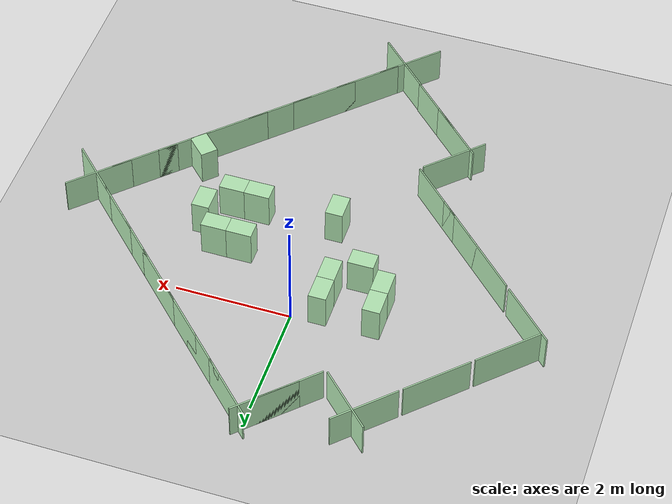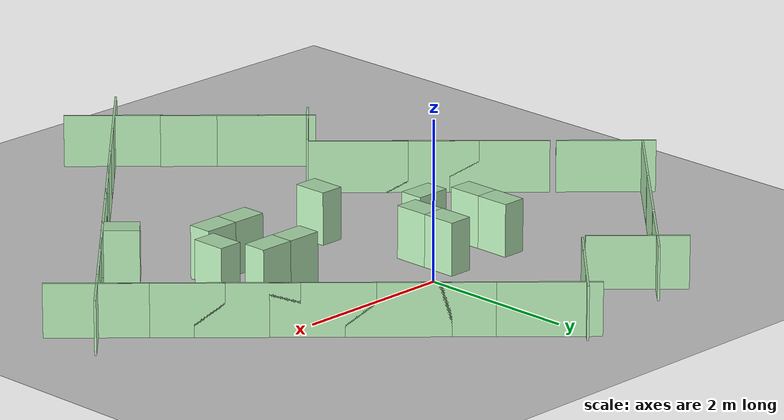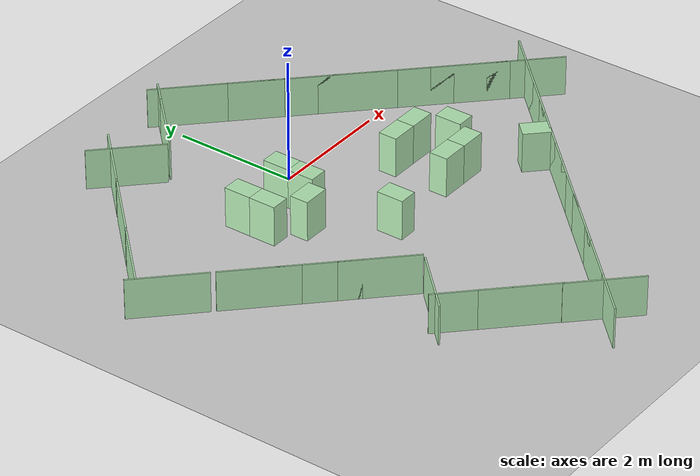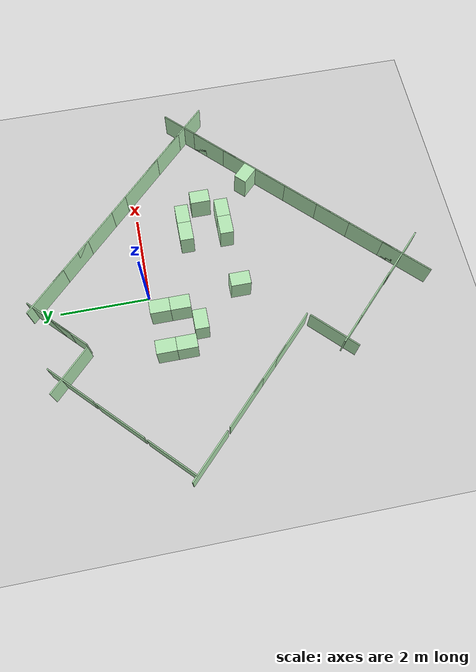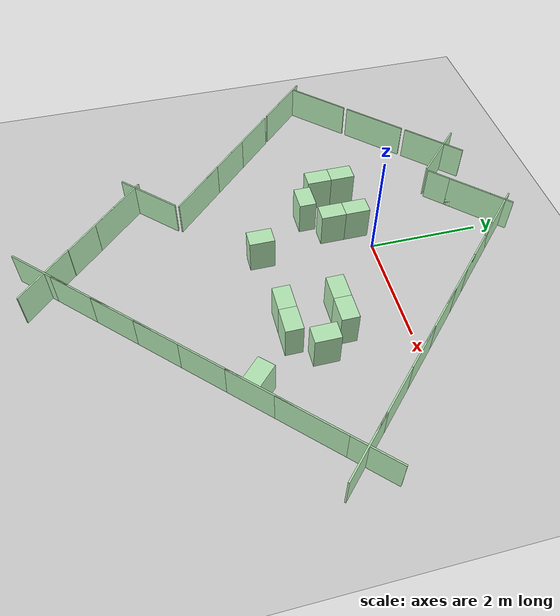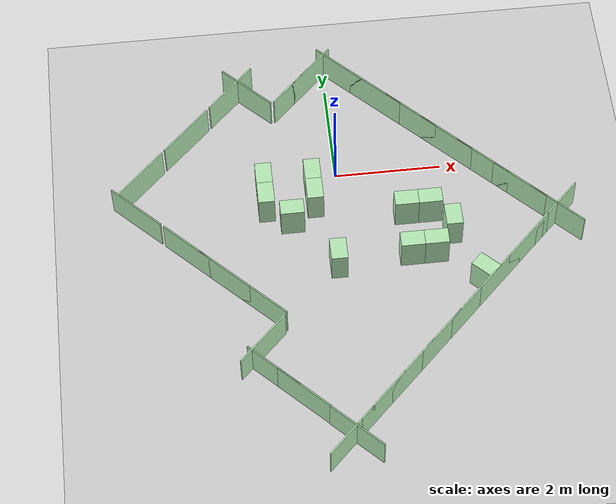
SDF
<sdf version="1.6">
 <world name="default">
  <scene><ambient>0.5 0.5 0.5 1</ambient><background>0.5 0.5 0.5 1</background><shadows>0</shadows></scene>
  <physics name="default_physics" default="0" type="ode">
   <ode>
    <solver>
     <type>quick</type>
     <iters>10</iters>
     <sor>1.3</sor>
     <use_dynamic_moi_rescaling>0</use_dynamic_moi_rescaling>
    </solver>
    <constraints>
     <cfm>0</cfm>
     <erp>0.2</erp>
     <contact_max_correcting_vel>100</contact_max_correcting_vel>
     <contact_surface_layer>0.001</contact_surface_layer>
    </constraints>
   </ode>
   <real_time_update_rate>100</real_time_update_rate>
   <max_step_size>0.01</max_step_size>
   <real_time_factor>1</real_time_factor>
  </physics>
  <light name="directional_light_1" type="directional">
   <cast_shadows>0</cast_shadows>
   <pose>0 0 30 0.1 0.1 0</pose>
   <diffuse>1 1 1 1</diffuse>
   <specular>0.1 0.1 0.1 1</specular>
   <attenuation><range>300</range></attenuation>
   <direction>0.1 0.1 -1</direction>
  </light>
  <model name="ground_plane">
   <static>1</static>
   <link name="link">
    <collision name="collision">
     <geometry><plane><normal>0 0 1</normal><size>100 100</size></plane></geometry>
     <surface><friction><ode><mu>100</mu><mu2>50</mu2></ode></friction></surface>
    </collision>
    <visual name="visual">
     <cast_shadows>0</cast_shadows>
     <geometry><plane><normal>0 0 1</normal><size>100 100</size></plane></geometry>
     <material>
      <script><uri>file://media/materials/scripts/gazebo.material</uri><name>Gazebo/Grey</name></script>
     </material>
    </visual>
   </link>
  </model>
  <model name="wall_1">
   <static>1</static>
   <link name="wall_1_link">
    <pose>-3.78491 -0.73691 0.15 0 -0 0.785398</pose>
    <collision name="wall_1_collision"><geometry><box><size>0.0254 1.2192 1.0</size></box></geometry></collision>
    <visual name="wall_1_visual">
     <geometry><box><size>0.0254 1.2192 1.0</size></box></geometry>
     <material>
      <ambient>0.7 0.9 0.7 1</ambient>
      <diffuse>0.7 0.9 0.7 1</diffuse>
      <specular>0.1 0.1 0.1 1</specular>
      <emissive>0 0 0 0</emissive>
     </material>
    </visual>
   </link>
  </model>
  <model name="wall_2">
   <static>1</static>
   <link name="wall_2_link">
    <pose>-2.87051 -1.65131 0.15 0 -0 0.785398</pose>
    <collision name="wall_2_collision"><geometry><box><size>0.0254 1.2192 1.0</size></box></geometry></collision>
    <visual name="wall_2_visual">
     <geometry><box><size>0.0254 1.2192 1.0</size></box></geometry>
     <material>
      <ambient>0.7 0.9 0.7 1</ambient>
      <diffuse>0.7 0.9 0.7 1</diffuse>
      <specular>0.1 0.1 0.1 1</specular>
      <emissive>0 0 0 0</emissive>
     </material>
    </visual>
   </link>
  </model>
  <model name="wall_3">
   <static>1</static>
   <link name="wall_3_link">
    <pose>-2.26091 -2.26091 0.15 0 -0 0.785398</pose>
    <collision name="wall_3_collision"><geometry><box><size>0.0254 1.2192 1.0</size></box></geometry></collision>
    <visual name="wall_3_visual">
     <geometry><box><size>0.0254 1.2192 1.0</size></box></geometry>
     <material>
      <ambient>0.7 0.9 0.7 1</ambient>
      <diffuse>0.7 0.9 0.7 1</diffuse>
      <specular>0.1 0.1 0.1 1</specular>
      <emissive>0 0 0 0</emissive>
     </material>
    </visual>
   </link>
  </model>
  <model name="wall_4">
   <static>1</static>
   <link name="wall_4_link">
    <pose>-1.65131 -2.87051 0.15 0 -0 0.785398</pose>
    <collision name="wall_4_collision"><geometry><box><size>0.0254 1.2192 1.0</size></box></geometry></collision>
    <visual name="wall_4_visual">
     <geometry><box><size>0.0254 1.2192 1.0</size></box></geometry>
     <material>
      <ambient>0.7 0.9 0.7 1</ambient>
      <diffuse>0.7 0.9 0.7 1</diffuse>
      <specular>0.1 0.1 0.1 1</specular>
      <emissive>0 0 0 0</emissive>
     </material>
    </visual>
   </link>
  </model>
  <model name="wall_5">
   <static>1</static>
   <link name="wall_5_link">
    <pose>-1.6941 -3.7923 0.15 0 0 -0.785398</pose>
    <collision name="wall_5_collision"><geometry><box><size>0.0254 1.2192 1.0</size></box></geometry></collision>
    <visual name="wall_5_visual">
     <geometry><box><size>0.0254 1.2192 1.0</size></box></geometry>
     <material>
      <ambient>0.7 0.9 0.7 1</ambient>
      <diffuse>0.7 0.9 0.7 1</diffuse>
      <specular>0.1 0.1 0.1 1</specular>
      <emissive>0 0 0 0</emissive>
     </material>
    </visual>
   </link>
  </model>
  <model name="wall_6">
   <static>1</static>
   <link name="wall_6_link">
    <pose>-1.524 1.8288 0.15 0 -0 0.785398</pose>
    <collision name="wall_6_collision"><geometry><box><size>0.0254 1.2192 1.0</size></box></geometry></collision>
    <visual name="wall_6_visual">
     <geometry><box><size>0.0254 1.2192 1.0</size></box></geometry>
     <material>
      <ambient>0.7 0.9 0.7 1</ambient>
      <diffuse>0.7 0.9 0.7 1</diffuse>
      <specular>0.1 0.1 0.1 1</specular>
      <emissive>0 0 0 0</emissive>
     </material>
    </visual>
   </link>
  </model>
  <model name="wall_7">
   <static>1</static>
   <link name="wall_7_link">
    <pose>0.332269 2.16107 0.15 0 -0 0.785398</pose>
    <collision name="wall_7_collision"><geometry><box><size>0.0254 1.2192 1.0</size></box></geometry></collision>
    <visual name="wall_7_visual">
     <geometry><box><size>0.0254 1.2192 1.0</size></box></geometry>
     <material>
      <ambient>0.7 0.9 0.7 1</ambient>
      <diffuse>0.7 0.9 0.7 1</diffuse>
      <specular>0.1 0.1 0.1 1</specular>
      <emissive>0 0 0 0</emissive>
     </material>
    </visual>
   </link>
  </model>
  <model name="wall_8">
   <static>1</static>
   <link name="wall_8_link">
    <pose>0.941869 1.55147 0.15 0 -0 0.785398</pose>
    <collision name="wall_8_collision"><geometry><box><size>0.0254 1.2192 1.0</size></box></geometry></collision>
    <visual name="wall_8_visual">
     <geometry><box><size>0.0254 1.2192 1.0</size></box></geometry>
     <material>
      <ambient>0.7 0.9 0.7 1</ambient>
      <diffuse>0.7 0.9 0.7 1</diffuse>
      <specular>0.1 0.1 0.1 1</specular>
      <emissive>0 0 0 0</emissive>
     </material>
    </visual>
   </link>
  </model>
  <model name="wall_9">
   <static>1</static>
   <link name="wall_9_link">
    <pose>1.55147 0.941869 0.15 0 -0 0.785398</pose>
    <collision name="wall_9_collision"><geometry><box><size>0.0254 1.2192 1.0</size></box></geometry></collision>
    <visual name="wall_9_visual">
     <geometry><box><size>0.0254 1.2192 1.0</size></box></geometry>
     <material>
      <ambient>0.7 0.9 0.7 1</ambient>
      <diffuse>0.7 0.9 0.7 1</diffuse>
      <specular>0.1 0.1 0.1 1</specular>
      <emissive>0 0 0 0</emissive>
     </material>
    </visual>
   </link>
  </model>
  <model name="wall_10">
   <static>1</static>
   <link name="wall_10_link">
    <pose>2.16107 0.332269 0.15 0 -0 0.785398</pose>
    <collision name="wall_10_collision"><geometry><box><size>0.0254 1.2192 1.0</size></box></geometry></collision>
    <visual name="wall_10_visual">
     <geometry><box><size>0.0254 1.2192 1.0</size></box></geometry>
     <material>
      <ambient>0.7 0.9 0.7 1</ambient>
      <diffuse>0.7 0.9 0.7 1</diffuse>
      <specular>0.1 0.1 0.1 1</specular>
      <emissive>0 0 0 0</emissive>
     </material>
    </visual>
   </link>
  </model>
  <model name="wall_11">
   <static>1</static>
   <link name="wall_11_link">
    <pose>2.77067 -0.277331 0.15 0 -0 0.785398</pose>
    <collision name="wall_11_collision"><geometry><box><size>0.0254 1.2192 1.0</size></box></geometry></collision>
    <visual name="wall_11_visual">
     <geometry><box><size>0.0254 1.2192 1.0</size></box></geometry>
     <material>
      <ambient>0.7 0.9 0.7 1</ambient>
      <diffuse>0.7 0.9 0.7 1</diffuse>
      <specular>0.1 0.1 0.1 1</specular>
      <emissive>0 0 0 0</emissive>
     </material>
    </visual>
   </link>
  </model>
  <model name="wall_12">
   <static>1</static>
   <link name="wall_12_link">
    <pose>3.38027 -0.886931 0.15 0 -0 0.785398</pose>
    <collision name="wall_12_collision"><geometry><box><size>0.0254 1.2192 1.0</size></box></geometry></collision>
    <visual name="wall_12_visual">
     <geometry><box><size>0.0254 1.2192 1.0</size></box></geometry>
     <material>
      <ambient>0.7 0.9 0.7 1</ambient>
      <diffuse>0.7 0.9 0.7 1</diffuse>
      <specular>0.1 0.1 0.1 1</specular>
      <emissive>0 0 0 0</emissive>
     </material>
    </visual>
   </link>
  </model>
  <model name="wall_13">
   <static>1</static>
   <link name="wall_13_link">
    <pose>3.98987 -1.49653 0.15 0 -0 0.785398</pose>
    <collision name="wall_13_collision"><geometry><box><size>0.0254 1.2192 1.0</size></box></geometry></collision>
    <visual name="wall_13_visual">
     <geometry><box><size>0.0254 1.2192 1.0</size></box></geometry>
     <material>
      <ambient>0.7 0.9 0.7 1</ambient>
      <diffuse>0.7 0.9 0.7 1</diffuse>
      <specular>0.1 0.1 0.1 1</specular>
      <emissive>0 0 0 0</emissive>
     </material>
    </visual>
   </link>
  </model>
  <model name="wall_14">
   <static>1</static>
   <link name="wall_14_link">
    <pose>-0.312194 -5.78381 0.15 0 0 -0.785398</pose>
    <collision name="wall_14_collision"><geometry><box><size>0.0254 1.2192 1.0</size></box></geometry></collision>
    <visual name="wall_14_visual">
     <geometry><box><size>0.0254 1.2192 1.0</size></box></geometry>
     <material>
      <ambient>0.7 0.9 0.7 1</ambient>
      <diffuse>0.7 0.9 0.7 1</diffuse>
      <specular>0.1 0.1 0.1 1</specular>
      <emissive>0 0 0 0</emissive>
     </material>
    </visual>
   </link>
  </model>
  <model name="wall_15">
   <static>1</static>
   <link name="wall_15_link">
    <pose>0.297406 -5.17421 0.15 0 0 -0.785398</pose>
    <collision name="wall_15_collision"><geometry><box><size>0.0254 1.2192 1.0</size></box></geometry></collision>
    <visual name="wall_15_visual">
     <geometry><box><size>0.0254 1.2192 1.0</size></box></geometry>
     <material>
      <ambient>0.7 0.9 0.7 1</ambient>
      <diffuse>0.7 0.9 0.7 1</diffuse>
      <specular>0.1 0.1 0.1 1</specular>
      <emissive>0 0 0 0</emissive>
     </material>
    </visual>
   </link>
  </model>
  <model name="wall_16">
   <static>1</static>
   <link name="wall_16_link">
    <pose>0.907006 -4.56461 0.15 0 0 -0.785398</pose>
    <collision name="wall_16_collision"><geometry><box><size>0.0254 1.2192 1.0</size></box></geometry></collision>
    <visual name="wall_16_visual">
     <geometry><box><size>0.0254 1.2192 1.0</size></box></geometry>
     <material>
      <ambient>0.7 0.9 0.7 1</ambient>
      <diffuse>0.7 0.9 0.7 1</diffuse>
      <specular>0.1 0.1 0.1 1</specular>
      <emissive>0 0 0 0</emissive>
     </material>
    </visual>
   </link>
  </model>
  <model name="wall_17">
   <static>1</static>
   <link name="wall_17_link">
    <pose>1.51661 -3.95501 0.15 0 0 -0.785398</pose>
    <collision name="wall_17_collision"><geometry><box><size>0.0254 1.2192 1.0</size></box></geometry></collision>
    <visual name="wall_17_visual">
     <geometry><box><size>0.0254 1.2192 1.0</size></box></geometry>
     <material>
      <ambient>0.7 0.9 0.7 1</ambient>
      <diffuse>0.7 0.9 0.7 1</diffuse>
      <specular>0.1 0.1 0.1 1</specular>
      <emissive>0 0 0 0</emissive>
     </material>
    </visual>
   </link>
  </model>
  <model name="wall_18">
   <static>1</static>
   <link name="wall_18_link">
    <pose>2.12621 -3.34541 0.15 0 0 -0.785398</pose>
    <collision name="wall_18_collision"><geometry><box><size>0.0254 1.2192 1.0</size></box></geometry></collision>
    <visual name="wall_18_visual">
     <geometry><box><size>0.0254 1.2192 1.0</size></box></geometry>
     <material>
      <ambient>0.7 0.9 0.7 1</ambient>
      <diffuse>0.7 0.9 0.7 1</diffuse>
      <specular>0.1 0.1 0.1 1</specular>
      <emissive>0 0 0 0</emissive>
     </material>
    </visual>
   </link>
  </model>
  <model name="wall_19">
   <static>1</static>
   <link name="wall_19_link">
    <pose>2.73581 -2.73581 0.15 0 0 -0.785398</pose>
    <collision name="wall_19_collision"><geometry><box><size>0.0254 1.2192 1.0</size></box></geometry></collision>
    <visual name="wall_19_visual">
     <geometry><box><size>0.0254 1.2192 1.0</size></box></geometry>
     <material>
      <ambient>0.7 0.9 0.7 1</ambient>
      <diffuse>0.7 0.9 0.7 1</diffuse>
      <specular>0.1 0.1 0.1 1</specular>
      <emissive>0 0 0 0</emissive>
     </material>
    </visual>
   </link>
  </model>
  <model name="wall_20">
   <static>1</static>
   <link name="wall_20_link">
    <pose>3.34541 -2.12621 0.15 0 0 -0.785398</pose>
    <collision name="wall_20_collision"><geometry><box><size>0.0254 1.2192 1.0</size></box></geometry></collision>
    <visual name="wall_20_visual">
     <geometry><box><size>0.0254 1.2192 1.0</size></box></geometry>
     <material>
      <ambient>0.7 0.9 0.7 1</ambient>
      <diffuse>0.7 0.9 0.7 1</diffuse>
      <specular>0.1 0.1 0.1 1</specular>
      <emissive>0 0 0 0</emissive>
     </material>
    </visual>
   </link>
  </model>
  <model name="wall_21">
   <static>1</static>
   <link name="wall_21_link">
    <pose>3.95501 -1.51661 0.15 0 0 -0.785398</pose>
    <collision name="wall_21_collision"><geometry><box><size>0.0254 1.2192 1.0</size></box></geometry></collision>
    <visual name="wall_21_visual">
     <geometry><box><size>0.0254 1.2192 1.0</size></box></geometry>
     <material>
      <ambient>0.7 0.9 0.7 1</ambient>
      <diffuse>0.7 0.9 0.7 1</diffuse>
      <specular>0.1 0.1 0.1 1</specular>
      <emissive>0 0 0 0</emissive>
     </material>
    </visual>
   </link>
  </model>
  <model name="wall_22">
   <static>1</static>
   <link name="wall_22_link">
    <pose>-0.29582 2.14258 0.15 0 0 -0.785398</pose>
    <collision name="wall_22_collision"><geometry><box><size>0.0254 1.2192 1.0</size></box></geometry></collision>
    <visual name="wall_22_visual">
     <geometry><box><size>0.0254 1.2192 1.0</size></box></geometry>
     <material>
      <ambient>0.7 0.9 0.7 1</ambient>
      <diffuse>0.7 0.9 0.7 1</diffuse>
      <specular>0.1 0.1 0.1 1</specular>
      <emissive>0 0 0 0</emissive>
     </material>
    </visual>
   </link>
  </model>
  <model name="wall_23">
   <static>1</static>
   <link name="wall_23_link">
    <pose>-0.60062 1.83778 0.15 0 0 -0.785398</pose>
    <collision name="wall_23_collision"><geometry><box><size>0.0254 1.2192 1.0</size></box></geometry></collision>
    <visual name="wall_23_visual">
     <geometry><box><size>0.0254 1.2192 1.0</size></box></geometry>
     <material>
      <ambient>0.7 0.9 0.7 1</ambient>
      <diffuse>0.7 0.9 0.7 1</diffuse>
      <specular>0.1 0.1 0.1 1</specular>
      <emissive>0 0 0 0</emissive>
     </material>
    </visual>
   </link>
  </model>
  <model name="wall_24">
   <static>1</static>
   <link name="wall_24_link">
    <pose>-1.83778 1.83778 0.15 0 0 -0.785398</pose>
    <collision name="wall_24_collision"><geometry><box><size>0.0254 1.2192 1.0</size></box></geometry></collision>
    <visual name="wall_24_visual">
     <geometry><box><size>0.0254 1.2192 1.0</size></box></geometry>
     <material>
      <ambient>0.7 0.9 0.7 1</ambient>
      <diffuse>0.7 0.9 0.7 1</diffuse>
      <specular>0.1 0.1 0.1 1</specular>
      <emissive>0 0 0 0</emissive>
     </material>
    </visual>
   </link>
  </model>
  <model name="wall_25">
   <static>1</static>
   <link name="wall_25_link">
    <pose>-2.75218 0.92338 0.15 0 0 -0.785398</pose>
    <collision name="wall_25_collision"><geometry><box><size>0.0254 1.2192 1.0</size></box></geometry></collision>
    <visual name="wall_25_visual">
     <geometry><box><size>0.0254 1.2192 1.0</size></box></geometry>
     <material>
      <ambient>0.7 0.9 0.7 1</ambient>
      <diffuse>0.7 0.9 0.7 1</diffuse>
      <specular>0.1 0.1 0.1 1</specular>
      <emissive>0 0 0 0</emissive>
     </material>
    </visual>
   </link>
  </model>
  <model name="wall_26">
   <static>1</static>
   <link name="wall_26_link">
    <pose>-3.66658 0.00898 0.15 0 0 -0.785398</pose>
    <collision name="wall_26_collision"><geometry><box><size>0.0254 1.2192 1.0</size></box></geometry></collision>
    <visual name="wall_26_visual">
     <geometry><box><size>0.0254 1.2192 1.0</size></box></geometry>
     <material>
      <ambient>0.7 0.9 0.7 1</ambient>
      <diffuse>0.7 0.9 0.7 1</diffuse>
      <specular>0.1 0.1 0.1 1</specular>
      <emissive>0 0 0 0</emissive>
     </material>
    </visual>
   </link>
  </model>
  <model name="box_1">
   <static>1</static>
   <link name="box_1_link">
    <pose>1.2192 -1.0668 0.15 0 -0 1.5708</pose>
    <collision name="box_1_collision"><geometry><box><size>0.3048 0.4445 1.0</size></box></geometry></collision>
    <visual name="box_1_visual">
     <geometry><box><size>0.3048 0.4445 1.0</size></box></geometry>
     <material>
      <ambient>0.7 0.9 0.7 1</ambient>
      <diffuse>0.7 0.9 0.7 1</diffuse>
      <specular>0.1 0.1 0.1 1</specular>
      <emissive>0 0 0 0</emissive>
     </material>
    </visual>
   </link>
  </model>
  <model name="box_2">
   <static>1</static>
   <link name="box_2_link">
    <pose>1.6637 -1.0668 0.15 0 -0 1.5708</pose>
    <collision name="box_2_collision"><geometry><box><size>0.3048 0.4445 1.0</size></box></geometry></collision>
    <visual name="box_2_visual">
     <geometry><box><size>0.3048 0.4445 1.0</size></box></geometry>
     <material>
      <ambient>0.7 0.9 0.7 1</ambient>
      <diffuse>0.7 0.9 0.7 1</diffuse>
      <specular>0.1 0.1 0.1 1</specular>
      <emissive>0 0 0 0</emissive>
     </material>
    </visual>
   </link>
  </model>
  <model name="box_3">
   <static>1</static>
   <link name="box_3_link">
    <pose>1.2192 -1.9812 0.15 0 -0 1.5708</pose>
    <collision name="box_3_collision"><geometry><box><size>0.3048 0.4445 1.0</size></box></geometry></collision>
    <visual name="box_3_visual">
     <geometry><box><size>0.3048 0.4445 1.0</size></box></geometry>
     <material>
      <ambient>0.7 0.9 0.7 1</ambient>
      <diffuse>0.7 0.9 0.7 1</diffuse>
      <specular>0.1 0.1 0.1 1</specular>
      <emissive>0 0 0 0</emissive>
     </material>
    </visual>
   </link>
  </model>
  <model name="box_4">
   <static>1</static>
   <link name="box_4_link">
    <pose>1.6637 -1.9812 0.15 0 -0 1.5708</pose>
    <collision name="box_4_collision"><geometry><box><size>0.3048 0.4445 1.0</size></box></geometry></collision>
    <visual name="box_4_visual">
     <geometry><box><size>0.3048 0.4445 1.0</size></box></geometry>
     <material>
      <ambient>0.7 0.9 0.7 1</ambient>
      <diffuse>0.7 0.9 0.7 1</diffuse>
      <specular>0.1 0.1 0.1 1</specular>
      <emissive>0 0 0 0</emissive>
     </material>
    </visual>
   </link>
  </model>
  <model name="box_5">
   <static>1</static>
   <link name="box_5_link">
    <pose>2.03835 -1.524 0.15 0 -0 0</pose>
    <collision name="box_5_collision"><geometry><box><size>0.3048 0.4445 1.0</size></box></geometry></collision>
    <visual name="box_5_visual">
     <geometry><box><size>0.3048 0.4445 1.0</size></box></geometry>
     <material>
      <ambient>0.7 0.9 0.7 1</ambient>
      <diffuse>0.7 0.9 0.7 1</diffuse>
      <specular>0.1 0.1 0.1 1</specular>
      <emissive>0 0 0 0</emissive>
     </material>
    </visual>
   </link>
  </model>
  <model name="box_6">
   <static>1</static>
   <link name="box_6_link">
    <pose>2.47538 -2.6909 0.15 0 -0 0.785398</pose>
    <collision name="box_6_collision"><geometry><box><size>0.3048 0.4445 1.0</size></box></geometry></collision>
    <visual name="box_6_visual">
     <geometry><box><size>0.3048 0.4445 1.0</size></box></geometry>
     <material>
      <ambient>0.7 0.9 0.7 1</ambient>
      <diffuse>0.7 0.9 0.7 1</diffuse>
      <specular>0.1 0.1 0.1 1</specular>
      <emissive>0 0 0 0</emissive>
     </material>
    </visual>
   </link>
  </model>
  <model name="box_7">
   <static>1</static>
   <link name="box_7_link">
    <pose>-0.1524 -2.05105 0.15 0 -0 0</pose>
    <collision name="box_7_collision"><geometry><box><size>0.3048 0.4445 1.0</size></box></geometry></collision>
    <visual name="box_7_visual">
     <geometry><box><size>0.3048 0.4445 1.0</size></box></geometry>
     <material>
      <ambient>0.7 0.9 0.7 1</ambient>
      <diffuse>0.7 0.9 0.7 1</diffuse>
      <specular>0.1 0.1 0.1 1</specular>
      <emissive>0 0 0 0</emissive>
     </material>
    </visual>
   </link>
  </model>
  <model name="box_8">
   <static>1</static>
   <link name="box_8_link">
    <pose>-1.3716 -0.22225 0.15 0 -0 0</pose>
    <collision name="box_8_collision"><geometry><box><size>0.3048 0.4445 1.0</size></box></geometry></collision>
    <visual name="box_8_visual">
     <geometry><box><size>0.3048 0.4445 1.0</size></box></geometry>
     <material>
      <ambient>0.7 0.9 0.7 1</ambient>
      <diffuse>0.7 0.9 0.7 1</diffuse>
      <specular>0.1 0.1 0.1 1</specular>
      <emissive>0 0 0 0</emissive>
     </material>
    </visual>
   </link>
  </model>
  <model name="box_9">
   <static>1</static>
   <link name="box_9_link">
    <pose>-1.3716 -0.22225 0.15 0 -0 0</pose>
    <collision name="box_9_collision"><geometry><box><size>0.3048 0.4445 1.0</size></box></geometry></collision>
    <visual name="box_9_visual">
     <geometry><box><size>0.3048 0.4445 1.0</size></box></geometry>
     <material>
      <ambient>0.7 0.9 0.7 1</ambient>
      <diffuse>0.7 0.9 0.7 1</diffuse>
      <specular>0.1 0.1 0.1 1</specular>
      <emissive>0 0 0 0</emissive>
     </material>
    </visual>
   </link>
  </model>
  <model name="box_10">
   <static>1</static>
   <link name="box_10_link">
    <pose>-1.3716 -0.66675 0.15 0 -0 0</pose>
    <collision name="box_10_collision"><geometry><box><size>0.3048 0.4445 1.0</size></box></geometry></collision>
    <visual name="box_10_visual">
     <geometry><box><size>0.3048 0.4445 1.0</size></box></geometry>
     <material>
      <ambient>0.7 0.9 0.7 1</ambient>
      <diffuse>0.7 0.9 0.7 1</diffuse>
      <specular>0.1 0.1 0.1 1</specular>
      <emissive>0 0 0 0</emissive>
     </material>
    </visual>
   </link>
  </model>
  <model name="box_11">
   <static>1</static>
   <link name="box_11_link">
    <pose>-0.4572 -0.22225 0.15 0 -0 0</pose>
    <collision name="box_11_collision"><geometry><box><size>0.3048 0.4445 1.0</size></box></geometry></collision>
    <visual name="box_11_visual">
     <geometry><box><size>0.3048 0.4445 1.0</size></box></geometry>
     <material>
      <ambient>0.7 0.9 0.7 1</ambient>
      <diffuse>0.7 0.9 0.7 1</diffuse>
      <specular>0.1 0.1 0.1 1</specular>
      <emissive>0 0 0 0</emissive>
     </material>
    </visual>
   </link>
  </model>
  <model name="box_12">
   <static>1</static>
   <link name="box_12_link">
    <pose>-0.4572 -0.66675 0.15 0 -0 0</pose>
    <collision name="box_12_collision"><geometry><box><size>0.3048 0.4445 1.0</size></box></geometry></collision>
    <visual name="box_12_visual">
     <geometry><box><size>0.3048 0.4445 1.0</size></box></geometry>
     <material>
      <ambient>0.7 0.9 0.7 1</ambient>
      <diffuse>0.7 0.9 0.7 1</diffuse>
      <specular>0.1 0.1 0.1 1</specular>
      <emissive>0 0 0 0</emissive>
     </material>
    </visual>
   </link>
  </model>
  <model name="box_13">
   <static>1</static>
   <link name="box_13_link">
    <pose>-0.9144 -1.0414 0.15 0 -0 1.5708</pose>
    <collision name="box_13_collision"><geometry><box><size>0.3048 0.4445 1.0</size></box></geometry></collision>
    <visual name="box_13_visual">
     <geometry><box><size>0.3048 0.4445 1.0</size></box></geometry>
     <material>
      <ambient>0.7 0.9 0.7 1</ambient>
      <diffuse>0.7 0.9 0.7 1</diffuse>
      <specular>0.1 0.1 0.1 1</specular>
      <emissive>0 0 0 0</emissive>
     </material>
    </visual>
   </link>
  </model>
  <gravity>0 0 -9.81</gravity>
  <magnetic_field>6e-06 2.3e-05 -4.2e-05</magnetic_field>
  <atmosphere type="adiabatic"/>
  <spherical_coordinates>
   <surface_model>EARTH_WGS84</surface_model>
   <latitude_deg>0</latitude_deg>
   <longitude_deg>0</longitude_deg>
   <elevation>0</elevation>
   <heading_deg>0</heading_deg>
  </spherical_coordinates>
  <model name="wall_1_clone">
   <static>1</static>
   <link name="wall_1_link">
    <pose>-3.78491 -0.73691 0.15 0 -0 0.785398</pose>
    <collision name="wall_1_collision"><geometry><box><size>0.0254 1.2192 1.0</size></box></geometry></collision>
    <visual name="wall_1_visual">
     <geometry><box><size>0.0254 1.2192 1.0</size></box></geometry>
     <material>
      <ambient>0.7 0.9 0.7 1</ambient>
      <diffuse>0.7 0.9 0.7 1</diffuse>
      <specular>0.1 0.1 0.1 1</specular>
      <emissive>0 0 0 0</emissive>
     </material>
    </visual>
   </link>
   <pose>2.23222 -3.62977 0 0 -0 0</pose>
  </model>
  <model name="wall_1_clone_0">
   <static>1</static>
   <link name="wall_1_link">
    <pose>-3.78491 -0.73691 0.15 0 -0 0.785398</pose>
    <collision name="wall_1_collision"><geometry><box><size>0.0254 1.2192 1.0</size></box></geometry></collision>
    <visual name="wall_1_visual">
     <geometry><box><size>0.0254 1.2192 1.0</size></box></geometry>
     <material>
      <ambient>0.7 0.9 0.7 1</ambient>
      <diffuse>0.7 0.9 0.7 1</diffuse>
      <specular>0.1 0.1 0.1 1</specular>
      <emissive>0 0 0 0</emissive>
     </material>
    </visual>
   </link>
   <pose>2.72566 -4.12431 0 0 -0 0</pose>
  </model>
  <model name="wall_1_clone_1">
   <static>1</static>
   <link name="wall_1_link">
    <pose>-3.78491 -0.73691 0.15 0 -0 0.785398</pose>
    <collision name="wall_1_collision"><geometry><box><size>0.0254 1.2192 1.0</size></box></geometry></collision>
    <visual name="wall_1_visual">
     <geometry><box><size>0.0254 1.2192 1.0</size></box></geometry>
     <material>
      <ambient>0.7 0.9 0.7 1</ambient>
      <diffuse>0.7 0.9 0.7 1</diffuse>
      <specular>0.1 0.1 0.1 1</specular>
      <emissive>0 0 0 0</emissive>
     </material>
    </visual>
   </link>
   <pose>3.5625 -4.97286 0 0 -0 0</pose>
  </model>
 </world>
</sdf>
